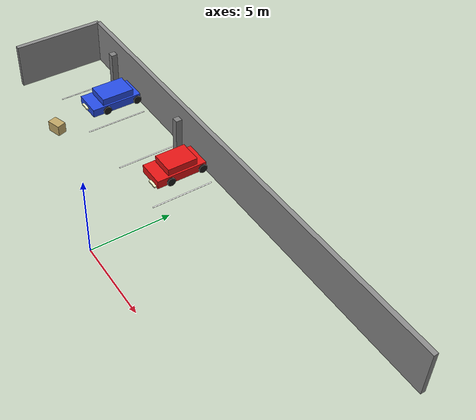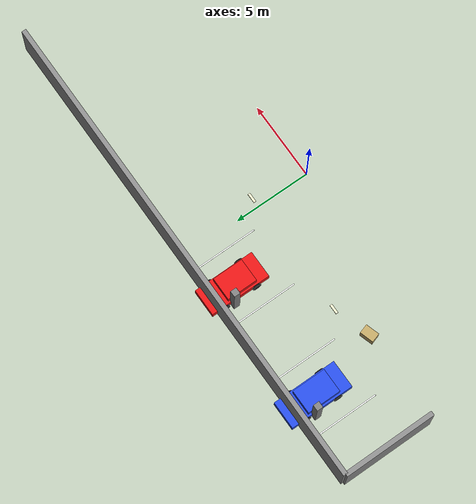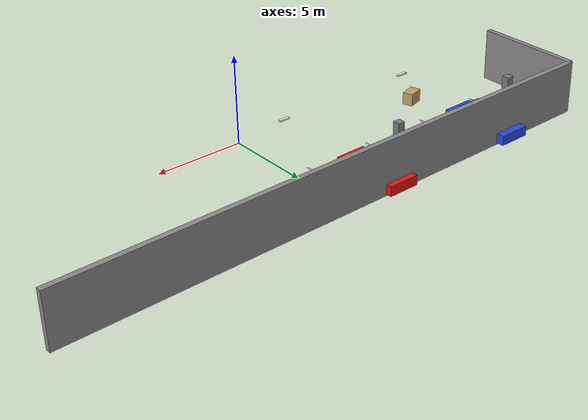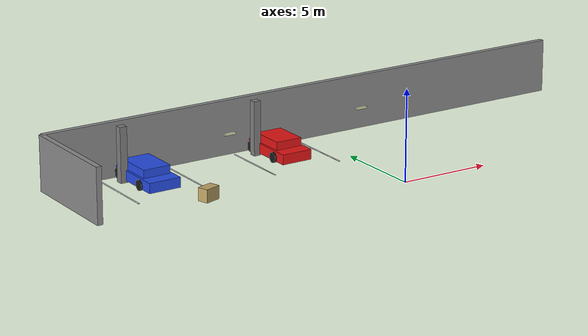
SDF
<sdf version="1.6">
 <world name="parking_garage">
  <model name="lineA0">
   <static>true</static>
   <pose>-13 6.5 0.06 0 0 1.5708</pose>
   <link name="link">
    <visual name="vis">
     <geometry><box><size>4 0.08 0.01</size></box></geometry>
     <material><ambient>1 1 1 1</ambient><diffuse>1 1 1 1</diffuse></material>
    </visual>
   </link>
  </model>
  <model name="lineA1">
   <static>true</static>
   <pose>-9 6.5 0.06 0 0 1.5708</pose>
   <link name="link">
    <visual name="vis">
     <geometry><box><size>4 0.08 0.01</size></box></geometry>
     <material><ambient>1 1 1 1</ambient><diffuse>1 1 1 1</diffuse></material>
    </visual>
   </link>
  </model>
  <model name="lineA2">
   <static>true</static>
   <pose>-5 6.5 0.06 0 0 1.5708</pose>
   <link name="link">
    <visual name="vis">
     <geometry><box><size>4 0.08 0.01</size></box></geometry>
     <material><ambient>1 1 1 1</ambient><diffuse>1 1 1 1</diffuse></material>
    </visual>
   </link>
  </model>
  <model name="lineA3">
   <static>true</static>
   <pose>-1 6.5 0.06 0 0 1.5708</pose>
   <link name="link">
    <visual name="vis">
     <geometry><box><size>4 0.08 0.01</size></box></geometry>
     <material><ambient>1 1 1 1</ambient><diffuse>1 1 1 1</diffuse></material>
    </visual>
   </link>
  </model>
  <model name="wall_north">
   <static>true</static>
   <pose>0 9 1.5 0 0 0</pose>
   <link name="link">
    <collision name="col"><geometry><box><size>32 0.3 3</size></box></geometry></collision>
    <visual name="vis">
     <geometry><box><size>32 0.3 3</size></box></geometry>
     <material><ambient>0.55 0.55 0.55 1</ambient><diffuse>0.55 0.55 0.55 1</diffuse></material>
    </visual>
   </link>
  </model>
  <model name="wall_west_top">
   <static>true</static>
   <pose>-16 6 1.5 0 0 0</pose>
   <link name="link">
    <collision name="col"><geometry><box><size>0.3 6 3</size></box></geometry></collision>
    <visual name="vis">
     <geometry><box><size>0.3 6 3</size></box></geometry>
     <material><ambient>0.55 0.55 0.55 1</ambient><diffuse>0.55 0.55 0.55 1</diffuse></material>
    </visual>
   </link>
  </model>
  <model name="pillar_A1">
   <static>true</static>
   <pose>-12 8 1.5 0 0 0</pose>
   <link name="link">
    <collision name="col"><geometry><box><size>0.4 0.4 3</size></box></geometry></collision>
    <visual name="vis">
     <geometry><box><size>0.4 0.4 3</size></box></geometry>
     <material><ambient>0.5 0.5 0.5 1</ambient><diffuse>0.5 0.5 0.5 1</diffuse></material>
    </visual>
   </link>
  </model>
  <model name="pillar_A2">
   <static>true</static>
   <pose>-4 8 1.5 0 0 0</pose>
   <link name="link">
    <collision name="col"><geometry><box><size>0.4 0.4 3</size></box></geometry></collision>
    <visual name="vis">
     <geometry><box><size>0.4 0.4 3</size></box></geometry>
     <material><ambient>0.5 0.5 0.5 1</ambient><diffuse>0.5 0.5 0.5 1</diffuse></material>
    </visual>
   </link>
  </model>
  <model name="lamp1">
   <static>true</static>
   <pose>-8 4 2.95 0 0 0</pose>
   <link name="link">
    <visual name="vis">
     <geometry><box><size>0.6 0.15 0.08</size></box></geometry>
     <material>
      <ambient>1 1 0.8 1</ambient>
      <diffuse>1 1 0.8 1</diffuse>
      <emissive>0.8 0.8 0.5 1</emissive>
     </material>
    </visual>
   </link>
  </model>
  <model name="lamp2">
   <static>true</static>
   <pose>0 4 2.95 0 0 0</pose>
   <link name="link">
    <visual name="vis">
     <geometry><box><size>0.6 0.15 0.08</size></box></geometry>
     <material>
      <ambient>1 1 0.8 1</ambient>
      <diffuse>1 1 0.8 1</diffuse>
      <emissive>0.8 0.8 0.5 1</emissive>
     </material>
    </visual>
   </link>
  </model>
  <model name="car_A1">
   <static>true</static>
   <pose>-11 7.5 0 0 0 1.5708</pose>
   <link name="body">
    <pose>0 0 0.38 0 0 0</pose>
    <collision name="col"><geometry><box><size>4.2 1.8 1.0</size></box></geometry></collision>
    <visual name="vis">
     <geometry><box><size>4.2 1.8 0.55</size></box></geometry>
     <material>
      <ambient>0.1 0.2 0.75 1</ambient>
      <diffuse>0.15 0.3 0.9 1</diffuse>
      <specular>0.5 0.5 0.5 1</specular>
     </material>
    </visual>
   </link>
   <link name="roof">
    <pose>-0.2 0 0.88 0 0 0</pose>
    <visual name="vis">
     <geometry><box><size>2.2 1.55 0.45</size></box></geometry>
     <material><ambient>0.1 0.2 0.75 1</ambient><diffuse>0.15 0.3 0.9 1</diffuse></material>
    </visual>
   </link>
   <link name="wFL">
    <pose>1.1 0.88 0.28 1.5708 0 0</pose>
    <visual name="vis">
     <geometry><cylinder><radius>0.28</radius><length>0.2</length></cylinder></geometry>
     <material><ambient>0.08 0.08 0.08 1</ambient><diffuse>0.1 0.1 0.1 1</diffuse></material>
    </visual>
   </link>
   <link name="wFR">
    <pose>1.1 -0.88 0.28 1.5708 0 0</pose>
    <visual name="vis">
     <geometry><cylinder><radius>0.28</radius><length>0.2</length></cylinder></geometry>
     <material><ambient>0.08 0.08 0.08 1</ambient><diffuse>0.1 0.1 0.1 1</diffuse></material>
    </visual>
   </link>
   <link name="wRL">
    <pose>-1.1 0.88 0.28 1.5708 0 0</pose>
    <visual name="vis">
     <geometry><cylinder><radius>0.28</radius><length>0.2</length></cylinder></geometry>
     <material><ambient>0.08 0.08 0.08 1</ambient><diffuse>0.1 0.1 0.1 1</diffuse></material>
    </visual>
   </link>
   <link name="wRR">
    <pose>-1.1 -0.88 0.28 1.5708 0 0</pose>
    <visual name="vis">
     <geometry><cylinder><radius>0.28</radius><length>0.2</length></cylinder></geometry>
     <material><ambient>0.08 0.08 0.08 1</ambient><diffuse>0.1 0.1 0.1 1</diffuse></material>
    </visual>
   </link>
   <joint name="body_to_roof" type="fixed"><parent>body</parent><child>roof</child></joint>
   <joint name="body_to_wFL" type="fixed"><parent>body</parent><child>wFL</child></joint>
   <joint name="body_to_wFR" type="fixed"><parent>body</parent><child>wFR</child></joint>
   <joint name="body_to_wRL" type="fixed"><parent>body</parent><child>wRL</child></joint>
   <joint name="body_to_wRR" type="fixed"><parent>body</parent><child>wRR</child></joint>
  </model>
  <model name="car_A3">
   <static>true</static>
   <pose>-3 7.5 0 0 0 1.5708</pose>
   <link name="body">
    <pose>0 0 0.38 0 0 0</pose>
    <collision name="col"><geometry><box><size>4.0 1.75 1.0</size></box></geometry></collision>
    <visual name="vis">
     <geometry><box><size>4.0 1.75 0.55</size></box></geometry>
     <material>
      <ambient>0.75 0.05 0.05 1</ambient>
      <diffuse>0.9 0.08 0.08 1</diffuse>
      <specular>0.5 0.5 0.5 1</specular>
     </material>
    </visual>
   </link>
   <link name="roof">
    <pose>-0.2 0 0.88 0 0 0</pose>
    <visual name="vis">
     <geometry><box><size>2.0 1.5 0.45</size></box></geometry>
     <material><ambient>0.75 0.05 0.05 1</ambient><diffuse>0.9 0.08 0.08 1</diffuse></material>
    </visual>
   </link>
   <link name="wFL">
    <pose>1.1 0.88 0.28 1.5708 0 0</pose>
    <visual name="vis">
     <geometry><cylinder><radius>0.28</radius><length>0.2</length></cylinder></geometry>
     <material><ambient>0.08 0.08 0.08 1</ambient><diffuse>0.1 0.1 0.1 1</diffuse></material>
    </visual>
   </link>
   <link name="wFR">
    <pose>1.1 -0.88 0.28 1.5708 0 0</pose>
    <visual name="vis">
     <geometry><cylinder><radius>0.28</radius><length>0.2</length></cylinder></geometry>
     <material><ambient>0.08 0.08 0.08 1</ambient><diffuse>0.1 0.1 0.1 1</diffuse></material>
    </visual>
   </link>
   <link name="wRL">
    <pose>-1.1 0.88 0.28 1.5708 0 0</pose>
    <visual name="vis">
     <geometry><cylinder><radius>0.28</radius><length>0.2</length></cylinder></geometry>
     <material><ambient>0.08 0.08 0.08 1</ambient><diffuse>0.1 0.1 0.1 1</diffuse></material>
    </visual>
   </link>
   <link name="wRR">
    <pose>-1.1 -0.88 0.28 1.5708 0 0</pose>
    <visual name="vis">
     <geometry><cylinder><radius>0.28</radius><length>0.2</length></cylinder></geometry>
     <material><ambient>0.08 0.08 0.08 1</ambient><diffuse>0.1 0.1 0.1 1</diffuse></material>
    </visual>
   </link>
   <joint name="body_to_roof" type="fixed"><parent>body</parent><child>roof</child></joint>
   <joint name="body_to_wFL" type="fixed"><parent>body</parent><child>wFL</child></joint>
   <joint name="body_to_wFR" type="fixed"><parent>body</parent><child>wFR</child></joint>
   <joint name="body_to_wRL" type="fixed"><parent>body</parent><child>wRL</child></joint>
   <joint name="body_to_wRR" type="fixed"><parent>body</parent><child>wRR</child></joint>
  </model>
  <model name="dozen">
   <static>true</static>
   <pose>-10 2.8 0.55 0 0 0.3</pose>
   <link name="link">
    <collision name="col"><geometry><box><size>0.9 0.6 0.7</size></box></geometry></collision>
    <visual name="vis">
     <geometry><box><size>0.9 0.6 0.7</size></box></geometry>
     <material><ambient>0.7 0.6 0.35 1</ambient><diffuse>0.75 0.65 0.4 1</diffuse></material>
    </visual>
   </link>
  </model>
 </world>
</sdf>
